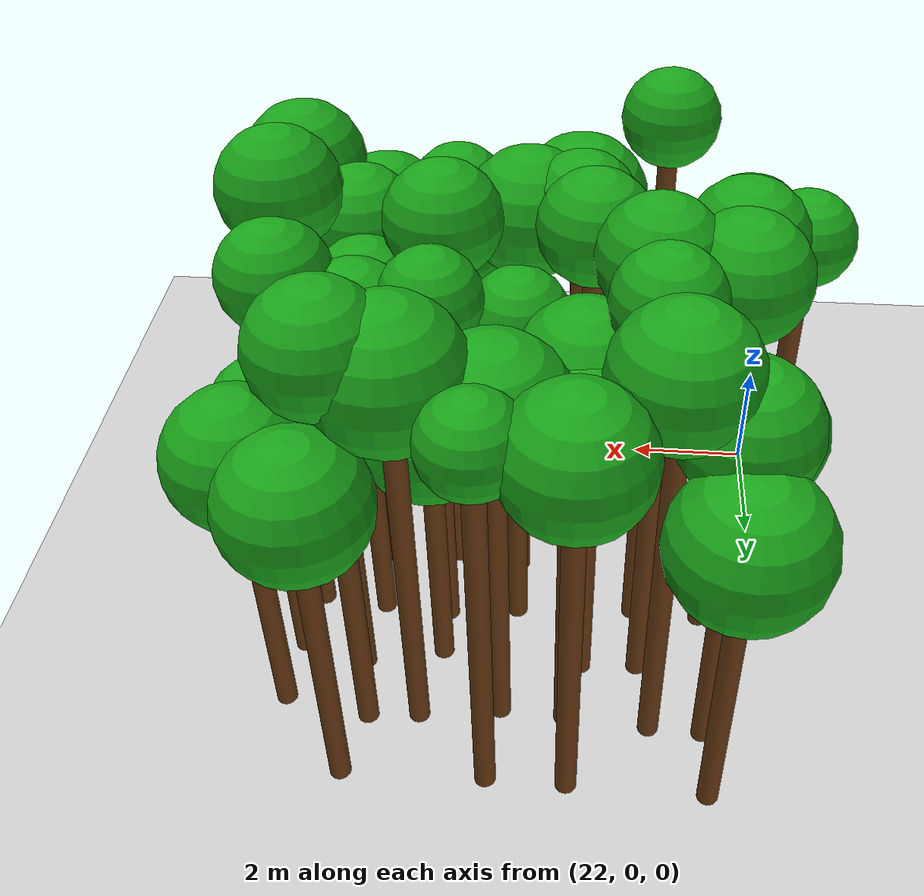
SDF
<sdf version="1.6">
 <world name="forest_world">
  <include><uri>model://sun</uri></include>
  <include><uri>model://ground_plane</uri></include>
  <model name="tree_2591_trunk">
   <static>true</static>
   <pose>21.80 1.96 2.91 0 0 0</pose>
   <link name="link">
    <collision name="collision">
     <geometry><cylinder><radius>0.16</radius><length>5.81</length></cylinder></geometry>
    </collision>
    <visual name="visual">
     <geometry><cylinder><radius>0.16</radius><length>5.81</length></cylinder></geometry>
     <material><ambient>0.35 0.20 0.05 1</ambient><diffuse>0.45 0.25 0.08 1</diffuse></material>
    </visual>
   </link>
  </model>
  <model name="tree_2591_leaf">
   <static>true</static>
   <pose>21.80 1.96 6.26 0 0 0</pose>
   <link name="link">
    <collision name="collision"><geometry><sphere><radius>0.74</radius></sphere></geometry></collision>
    <visual name="visual">
     <geometry><sphere><radius>0.74</radius></sphere></geometry>
     <material><ambient>0.05 0.45 0.05 1</ambient><diffuse>0.10 0.65 0.10 1</diffuse></material>
    </visual>
   </link>
  </model>
  <model name="tree_2645_trunk">
   <static>true</static>
   <pose>22.66 0.66 2.43 0 0 0</pose>
   <link name="link">
    <collision name="collision">
     <geometry><cylinder><radius>0.16</radius><length>4.86</length></cylinder></geometry>
    </collision>
    <visual name="visual">
     <geometry><cylinder><radius>0.16</radius><length>4.86</length></cylinder></geometry>
     <material><ambient>0.35 0.20 0.05 1</ambient><diffuse>0.45 0.25 0.08 1</diffuse></material>
    </visual>
   </link>
  </model>
  <model name="tree_2645_leaf">
   <static>true</static>
   <pose>22.66 0.66 5.37 0 0 0</pose>
   <link name="link">
    <collision name="collision"><geometry><sphere><radius>0.83</radius></sphere></geometry></collision>
    <visual name="visual">
     <geometry><sphere><radius>0.83</radius></sphere></geometry>
     <material><ambient>0.05 0.45 0.05 1</ambient><diffuse>0.10 0.65 0.10 1</diffuse></material>
    </visual>
   </link>
  </model>
  <model name="tree_2646_trunk">
   <static>true</static>
   <pose>22.65 1.84 2.86 0 0 0</pose>
   <link name="link">
    <collision name="collision">
     <geometry><cylinder><radius>0.16</radius><length>5.73</length></cylinder></geometry>
    </collision>
    <visual name="visual">
     <geometry><cylinder><radius>0.16</radius><length>5.73</length></cylinder></geometry>
     <material><ambient>0.35 0.20 0.05 1</ambient><diffuse>0.45 0.25 0.08 1</diffuse></material>
    </visual>
   </link>
  </model>
  <model name="tree_2646_leaf">
   <static>true</static>
   <pose>22.65 1.84 6.25 0 0 0</pose>
   <link name="link">
    <collision name="collision"><geometry><sphere><radius>0.88</radius></sphere></geometry></collision>
    <visual name="visual">
     <geometry><sphere><radius>0.88</radius></sphere></geometry>
     <material><ambient>0.05 0.45 0.05 1</ambient><diffuse>0.10 0.65 0.10 1</diffuse></material>
    </visual>
   </link>
  </model>
  <model name="tree_2647_trunk">
   <static>true</static>
   <pose>22.83 3.02 3.18 0 0 0</pose>
   <link name="link">
    <collision name="collision">
     <geometry><cylinder><radius>0.16</radius><length>6.36</length></cylinder></geometry>
    </collision>
    <visual name="visual">
     <geometry><cylinder><radius>0.16</radius><length>6.36</length></cylinder></geometry>
     <material><ambient>0.35 0.20 0.05 1</ambient><diffuse>0.45 0.25 0.08 1</diffuse></material>
    </visual>
   </link>
  </model>
  <model name="tree_2647_leaf">
   <static>true</static>
   <pose>22.83 3.02 6.90 0 0 0</pose>
   <link name="link">
    <collision name="collision"><geometry><sphere><radius>0.89</radius></sphere></geometry></collision>
    <visual name="visual">
     <geometry><sphere><radius>0.89</radius></sphere></geometry>
     <material><ambient>0.05 0.45 0.05 1</ambient><diffuse>0.10 0.65 0.10 1</diffuse></material>
    </visual>
   </link>
  </model>
  <model name="tree_2648_trunk">
   <static>true</static>
   <pose>22.94 4.10 3.21 0 0 0</pose>
   <link name="link">
    <collision name="collision">
     <geometry><cylinder><radius>0.16</radius><length>6.42</length></cylinder></geometry>
    </collision>
    <visual name="visual">
     <geometry><cylinder><radius>0.16</radius><length>6.42</length></cylinder></geometry>
     <material><ambient>0.35 0.20 0.05 1</ambient><diffuse>0.45 0.25 0.08 1</diffuse></material>
    </visual>
   </link>
  </model>
  <model name="tree_2648_leaf">
   <static>true</static>
   <pose>22.94 4.10 6.99 0 0 0</pose>
   <link name="link">
    <collision name="collision"><geometry><sphere><radius>0.94</radius></sphere></geometry></collision>
    <visual name="visual">
     <geometry><sphere><radius>0.94</radius></sphere></geometry>
     <material><ambient>0.05 0.45 0.05 1</ambient><diffuse>0.10 0.65 0.10 1</diffuse></material>
    </visual>
   </link>
  </model>
  <model name="tree_2649_trunk">
   <static>true</static>
   <pose>22.62 5.11 2.28 0 0 0</pose>
   <link name="link">
    <collision name="collision">
     <geometry><cylinder><radius>0.16</radius><length>4.57</length></cylinder></geometry>
    </collision>
    <visual name="visual">
     <geometry><cylinder><radius>0.16</radius><length>4.57</length></cylinder></geometry>
     <material><ambient>0.35 0.20 0.05 1</ambient><diffuse>0.45 0.25 0.08 1</diffuse></material>
    </visual>
   </link>
  </model>
  <model name="tree_2649_leaf">
   <static>true</static>
   <pose>22.62 5.11 5.16 0 0 0</pose>
   <link name="link">
    <collision name="collision"><geometry><sphere><radius>0.99</radius></sphere></geometry></collision>
    <visual name="visual">
     <geometry><sphere><radius>0.99</radius></sphere></geometry>
     <material><ambient>0.05 0.45 0.05 1</ambient><diffuse>0.10 0.65 0.10 1</diffuse></material>
    </visual>
   </link>
  </model>
  <model name="tree_2650_trunk">
   <static>true</static>
   <pose>22.96 6.38 2.88 0 0 0</pose>
   <link name="link">
    <collision name="collision">
     <geometry><cylinder><radius>0.16</radius><length>5.77</length></cylinder></geometry>
    </collision>
    <visual name="visual">
     <geometry><cylinder><radius>0.16</radius><length>5.77</length></cylinder></geometry>
     <material><ambient>0.35 0.20 0.05 1</ambient><diffuse>0.45 0.25 0.08 1</diffuse></material>
    </visual>
   </link>
  </model>
  <model name="tree_2650_leaf">
   <static>true</static>
   <pose>22.96 6.38 6.34 0 0 0</pose>
   <link name="link">
    <collision name="collision"><geometry><sphere><radius>0.96</radius></sphere></geometry></collision>
    <visual name="visual">
     <geometry><sphere><radius>0.96</radius></sphere></geometry>
     <material><ambient>0.05 0.45 0.05 1</ambient><diffuse>0.10 0.65 0.10 1</diffuse></material>
    </visual>
   </link>
  </model>
  <model name="tree_2651_trunk">
   <static>true</static>
   <pose>22.91 7.47 2.39 0 0 0</pose>
   <link name="link">
    <collision name="collision">
     <geometry><cylinder><radius>0.16</radius><length>4.78</length></cylinder></geometry>
    </collision>
    <visual name="visual">
     <geometry><cylinder><radius>0.16</radius><length>4.78</length></cylinder></geometry>
     <material><ambient>0.35 0.20 0.05 1</ambient><diffuse>0.45 0.25 0.08 1</diffuse></material>
    </visual>
   </link>
  </model>
  <model name="tree_2651_leaf">
   <static>true</static>
   <pose>22.91 7.47 5.43 0 0 0</pose>
   <link name="link">
    <collision name="collision"><geometry><sphere><radius>1.09</radius></sphere></geometry></collision>
    <visual name="visual">
     <geometry><sphere><radius>1.09</radius></sphere></geometry>
     <material><ambient>0.05 0.45 0.05 1</ambient><diffuse>0.10 0.65 0.10 1</diffuse></material>
    </visual>
   </link>
  </model>
  <model name="tree_2699_trunk">
   <static>true</static>
   <pose>23.82 -0.29 3.25 0 0 0</pose>
   <link name="link">
    <collision name="collision">
     <geometry><cylinder><radius>0.16</radius><length>6.49</length></cylinder></geometry>
    </collision>
    <visual name="visual">
     <geometry><cylinder><radius>0.16</radius><length>6.49</length></cylinder></geometry>
     <material><ambient>0.35 0.20 0.05 1</ambient><diffuse>0.45 0.25 0.08 1</diffuse></material>
    </visual>
   </link>
  </model>
  <model name="tree_2699_leaf">
   <static>true</static>
   <pose>23.82 -0.29 6.97 0 0 0</pose>
   <link name="link">
    <collision name="collision"><geometry><sphere><radius>0.79</radius></sphere></geometry></collision>
    <visual name="visual">
     <geometry><sphere><radius>0.79</radius></sphere></geometry>
     <material><ambient>0.05 0.45 0.05 1</ambient><diffuse>0.10 0.65 0.10 1</diffuse></material>
    </visual>
   </link>
  </model>
  <model name="tree_2700_trunk">
   <static>true</static>
   <pose>23.86 0.95 2.19 0 0 0</pose>
   <link name="link">
    <collision name="collision">
     <geometry><cylinder><radius>0.16</radius><length>4.38</length></cylinder></geometry>
    </collision>
    <visual name="visual">
     <geometry><cylinder><radius>0.16</radius><length>4.38</length></cylinder></geometry>
     <material><ambient>0.35 0.20 0.05 1</ambient><diffuse>0.45 0.25 0.08 1</diffuse></material>
    </visual>
   </link>
  </model>
  <model name="tree_2700_leaf">
   <static>true</static>
   <pose>23.86 0.95 4.87 0 0 0</pose>
   <link name="link">
    <collision name="collision"><geometry><sphere><radius>0.81</radius></sphere></geometry></collision>
    <visual name="visual">
     <geometry><sphere><radius>0.81</radius></sphere></geometry>
     <material><ambient>0.05 0.45 0.05 1</ambient><diffuse>0.10 0.65 0.10 1</diffuse></material>
    </visual>
   </link>
  </model>
  <model name="tree_2701_trunk">
   <static>true</static>
   <pose>23.74 2.00 2.26 0 0 0</pose>
   <link name="link">
    <collision name="collision">
     <geometry><cylinder><radius>0.16</radius><length>4.52</length></cylinder></geometry>
    </collision>
    <visual name="visual">
     <geometry><cylinder><radius>0.16</radius><length>4.52</length></cylinder></geometry>
     <material><ambient>0.35 0.20 0.05 1</ambient><diffuse>0.45 0.25 0.08 1</diffuse></material>
    </visual>
   </link>
  </model>
  <model name="tree_2701_leaf">
   <static>true</static>
   <pose>23.74 2.00 5.14 0 0 0</pose>
   <link name="link">
    <collision name="collision"><geometry><sphere><radius>1.04</radius></sphere></geometry></collision>
    <visual name="visual">
     <geometry><sphere><radius>1.04</radius></sphere></geometry>
     <material><ambient>0.05 0.45 0.05 1</ambient><diffuse>0.10 0.65 0.10 1</diffuse></material>
    </visual>
   </link>
  </model>
  <model name="tree_2702_trunk">
   <static>true</static>
   <pose>23.91 3.04 2.12 0 0 0</pose>
   <link name="link">
    <collision name="collision">
     <geometry><cylinder><radius>0.16</radius><length>4.24</length></cylinder></geometry>
    </collision>
    <visual name="visual">
     <geometry><cylinder><radius>0.16</radius><length>4.24</length></cylinder></geometry>
     <material><ambient>0.35 0.20 0.05 1</ambient><diffuse>0.45 0.25 0.08 1</diffuse></material>
    </visual>
   </link>
  </model>
  <model name="tree_2702_leaf">
   <static>true</static>
   <pose>23.91 3.04 4.81 0 0 0</pose>
   <link name="link">
    <collision name="collision"><geometry><sphere><radius>0.96</radius></sphere></geometry></collision>
    <visual name="visual">
     <geometry><sphere><radius>0.96</radius></sphere></geometry>
     <material><ambient>0.05 0.45 0.05 1</ambient><diffuse>0.10 0.65 0.10 1</diffuse></material>
    </visual>
   </link>
  </model>
  <model name="tree_2703_trunk">
   <static>true</static>
   <pose>24.06 4.02 3.33 0 0 0</pose>
   <link name="link">
    <collision name="collision">
     <geometry><cylinder><radius>0.16</radius><length>6.67</length></cylinder></geometry>
    </collision>
    <visual name="visual">
     <geometry><cylinder><radius>0.16</radius><length>6.67</length></cylinder></geometry>
     <material><ambient>0.35 0.20 0.05 1</ambient><diffuse>0.45 0.25 0.08 1</diffuse></material>
    </visual>
   </link>
  </model>
  <model name="tree_2703_leaf">
   <static>true</static>
   <pose>24.06 4.02 7.20 0 0 0</pose>
   <link name="link">
    <collision name="collision"><geometry><sphere><radius>0.89</radius></sphere></geometry></collision>
    <visual name="visual">
     <geometry><sphere><radius>0.89</radius></sphere></geometry>
     <material><ambient>0.05 0.45 0.05 1</ambient><diffuse>0.10 0.65 0.10 1</diffuse></material>
    </visual>
   </link>
  </model>
  <model name="tree_2704_trunk">
   <static>true</static>
   <pose>23.98 5.18 3.44 0 0 0</pose>
   <link name="link">
    <collision name="collision">
     <geometry><cylinder><radius>0.16</radius><length>6.87</length></cylinder></geometry>
    </collision>
    <visual name="visual">
     <geometry><cylinder><radius>0.16</radius><length>6.87</length></cylinder></geometry>
     <material><ambient>0.35 0.20 0.05 1</ambient><diffuse>0.45 0.25 0.08 1</diffuse></material>
    </visual>
   </link>
  </model>
  <model name="tree_2704_leaf">
   <static>true</static>
   <pose>23.98 5.18 7.33 0 0 0</pose>
   <link name="link">
    <collision name="collision"><geometry><sphere><radius>0.77</radius></sphere></geometry></collision>
    <visual name="visual">
     <geometry><sphere><radius>0.77</radius></sphere></geometry>
     <material><ambient>0.05 0.45 0.05 1</ambient><diffuse>0.10 0.65 0.10 1</diffuse></material>
    </visual>
   </link>
  </model>
  <model name="tree_2705_trunk">
   <static>true</static>
   <pose>23.79 6.34 3.25 0 0 0</pose>
   <link name="link">
    <collision name="collision">
     <geometry><cylinder><radius>0.16</radius><length>6.50</length></cylinder></geometry>
    </collision>
    <visual name="visual">
     <geometry><cylinder><radius>0.16</radius><length>6.50</length></cylinder></geometry>
     <material><ambient>0.35 0.20 0.05 1</ambient><diffuse>0.45 0.25 0.08 1</diffuse></material>
    </visual>
   </link>
  </model>
  <model name="tree_2705_leaf">
   <static>true</static>
   <pose>23.79 6.34 7.10 0 0 0</pose>
   <link name="link">
    <collision name="collision"><geometry><sphere><radius>0.99</radius></sphere></geometry></collision>
    <visual name="visual">
     <geometry><sphere><radius>0.99</radius></sphere></geometry>
     <material><ambient>0.05 0.45 0.05 1</ambient><diffuse>0.10 0.65 0.10 1</diffuse></material>
    </visual>
   </link>
  </model>
  <model name="tree_2755_trunk">
   <static>true</static>
   <pose>25.17 0.82 2.74 0 0 0</pose>
   <link name="link">
    <collision name="collision">
     <geometry><cylinder><radius>0.16</radius><length>5.48</length></cylinder></geometry>
    </collision>
    <visual name="visual">
     <geometry><cylinder><radius>0.16</radius><length>5.48</length></cylinder></geometry>
     <material><ambient>0.35 0.20 0.05 1</ambient><diffuse>0.45 0.25 0.08 1</diffuse></material>
    </visual>
   </link>
  </model>
  <model name="tree_2755_leaf">
   <static>true</static>
   <pose>25.17 0.82 6.11 0 0 0</pose>
   <link name="link">
    <collision name="collision"><geometry><sphere><radius>1.04</radius></sphere></geometry></collision>
    <visual name="visual">
     <geometry><sphere><radius>1.04</radius></sphere></geometry>
     <material><ambient>0.05 0.45 0.05 1</ambient><diffuse>0.10 0.65 0.10 1</diffuse></material>
    </visual>
   </link>
  </model>
  <model name="tree_2756_trunk">
   <static>true</static>
   <pose>25.13 2.05 3.12 0 0 0</pose>
   <link name="link">
    <collision name="collision">
     <geometry><cylinder><radius>0.16</radius><length>6.24</length></cylinder></geometry>
    </collision>
    <visual name="visual">
     <geometry><cylinder><radius>0.16</radius><length>6.24</length></cylinder></geometry>
     <material><ambient>0.35 0.20 0.05 1</ambient><diffuse>0.45 0.25 0.08 1</diffuse></material>
    </visual>
   </link>
  </model>
  <model name="tree_2756_leaf">
   <static>true</static>
   <pose>25.13 2.05 6.74 0 0 0</pose>
   <link name="link">
    <collision name="collision"><geometry><sphere><radius>0.83</radius></sphere></geometry></collision>
    <visual name="visual">
     <geometry><sphere><radius>0.83</radius></sphere></geometry>
     <material><ambient>0.05 0.45 0.05 1</ambient><diffuse>0.10 0.65 0.10 1</diffuse></material>
    </visual>
   </link>
  </model>
  <model name="tree_2757_trunk">
   <static>true</static>
   <pose>24.93 3.15 3.29 0 0 0</pose>
   <link name="link">
    <collision name="collision">
     <geometry><cylinder><radius>0.16</radius><length>6.58</length></cylinder></geometry>
    </collision>
    <visual name="visual">
     <geometry><cylinder><radius>0.16</radius><length>6.58</length></cylinder></geometry>
     <material><ambient>0.35 0.20 0.05 1</ambient><diffuse>0.45 0.25 0.08 1</diffuse></material>
    </visual>
   </link>
  </model>
  <model name="tree_2757_leaf">
   <static>true</static>
   <pose>24.93 3.15 7.08 0 0 0</pose>
   <link name="link">
    <collision name="collision"><geometry><sphere><radius>0.84</radius></sphere></geometry></collision>
    <visual name="visual">
     <geometry><sphere><radius>0.84</radius></sphere></geometry>
     <material><ambient>0.05 0.45 0.05 1</ambient><diffuse>0.10 0.65 0.10 1</diffuse></material>
    </visual>
   </link>
  </model>
  <model name="tree_2758_trunk">
   <static>true</static>
   <pose>24.98 4.23 2.42 0 0 0</pose>
   <link name="link">
    <collision name="collision">
     <geometry><cylinder><radius>0.16</radius><length>4.83</length></cylinder></geometry>
    </collision>
    <visual name="visual">
     <geometry><cylinder><radius>0.16</radius><length>4.83</length></cylinder></geometry>
     <material><ambient>0.35 0.20 0.05 1</ambient><diffuse>0.45 0.25 0.08 1</diffuse></material>
    </visual>
   </link>
  </model>
  <model name="tree_2758_leaf">
   <static>true</static>
   <pose>24.98 4.23 5.46 0 0 0</pose>
   <link name="link">
    <collision name="collision"><geometry><sphere><radius>1.04</radius></sphere></geometry></collision>
    <visual name="visual">
     <geometry><sphere><radius>1.04</radius></sphere></geometry>
     <material><ambient>0.05 0.45 0.05 1</ambient><diffuse>0.10 0.65 0.10 1</diffuse></material>
    </visual>
   </link>
  </model>
  <model name="tree_2759_trunk">
   <static>true</static>
   <pose>24.88 5.21 2.23 0 0 0</pose>
   <link name="link">
    <collision name="collision">
     <geometry><cylinder><radius>0.16</radius><length>4.47</length></cylinder></geometry>
    </collision>
    <visual name="visual">
     <geometry><cylinder><radius>0.16</radius><length>4.47</length></cylinder></geometry>
     <material><ambient>0.35 0.20 0.05 1</ambient><diffuse>0.45 0.25 0.08 1</diffuse></material>
    </visual>
   </link>
  </model>
  <model name="tree_2759_leaf">
   <static>true</static>
   <pose>24.88 5.21 5.09 0 0 0</pose>
   <link name="link">
    <collision name="collision"><geometry><sphere><radius>1.03</radius></sphere></geometry></collision>
    <visual name="visual">
     <geometry><sphere><radius>1.03</radius></sphere></geometry>
     <material><ambient>0.05 0.45 0.05 1</ambient><diffuse>0.10 0.65 0.10 1</diffuse></material>
    </visual>
   </link>
  </model>
  <model name="tree_2760_trunk">
   <static>true</static>
   <pose>25.10 6.23 2.42 0 0 0</pose>
   <link name="link">
    <collision name="collision">
     <geometry><cylinder><radius>0.16</radius><length>4.85</length></cylinder></geometry>
    </collision>
    <visual name="visual">
     <geometry><cylinder><radius>0.16</radius><length>4.85</length></cylinder></geometry>
     <material><ambient>0.35 0.20 0.05 1</ambient><diffuse>0.45 0.25 0.08 1</diffuse></material>
    </visual>
   </link>
  </model>
  <model name="tree_2760_leaf">
   <static>true</static>
   <pose>25.10 6.23 5.30 0 0 0</pose>
   <link name="link">
    <collision name="collision"><geometry><sphere><radius>0.75</radius></sphere></geometry></collision>
    <visual name="visual">
     <geometry><sphere><radius>0.75</radius></sphere></geometry>
     <material><ambient>0.05 0.45 0.05 1</ambient><diffuse>0.10 0.65 0.10 1</diffuse></material>
    </visual>
   </link>
  </model>
  <model name="tree_2761_trunk">
   <static>true</static>
   <pose>25.02 7.42 3.04 0 0 0</pose>
   <link name="link">
    <collision name="collision">
     <geometry><cylinder><radius>0.16</radius><length>6.08</length></cylinder></geometry>
    </collision>
    <visual name="visual">
     <geometry><cylinder><radius>0.16</radius><length>6.08</length></cylinder></geometry>
     <material><ambient>0.35 0.20 0.05 1</ambient><diffuse>0.45 0.25 0.08 1</diffuse></material>
    </visual>
   </link>
  </model>
  <model name="tree_2761_leaf">
   <static>true</static>
   <pose>25.02 7.42 6.68 0 0 0</pose>
   <link name="link">
    <collision name="collision"><geometry><sphere><radius>1.00</radius></sphere></geometry></collision>
    <visual name="visual">
     <geometry><sphere><radius>1.00</radius></sphere></geometry>
     <material><ambient>0.05 0.45 0.05 1</ambient><diffuse>0.10 0.65 0.10 1</diffuse></material>
    </visual>
   </link>
  </model>
  <model name="tree_2810_trunk">
   <static>true</static>
   <pose>26.07 0.66 2.58 0 0 0</pose>
   <link name="link">
    <collision name="collision">
     <geometry><cylinder><radius>0.16</radius><length>5.17</length></cylinder></geometry>
    </collision>
    <visual name="visual">
     <geometry><cylinder><radius>0.16</radius><length>5.17</length></cylinder></geometry>
     <material><ambient>0.35 0.20 0.05 1</ambient><diffuse>0.45 0.25 0.08 1</diffuse></material>
    </visual>
   </link>
  </model>
  <model name="tree_2810_leaf">
   <static>true</static>
   <pose>26.07 0.66 5.71 0 0 0</pose>
   <link name="link">
    <collision name="collision"><geometry><sphere><radius>0.91</radius></sphere></geometry></collision>
    <visual name="visual">
     <geometry><sphere><radius>0.91</radius></sphere></geometry>
     <material><ambient>0.05 0.45 0.05 1</ambient><diffuse>0.10 0.65 0.10 1</diffuse></material>
    </visual>
   </link>
  </model>
  <model name="tree_2811_trunk">
   <static>true</static>
   <pose>25.92 1.83 2.93 0 0 0</pose>
   <link name="link">
    <collision name="collision">
     <geometry><cylinder><radius>0.16</radius><length>5.86</length></cylinder></geometry>
    </collision>
    <visual name="visual">
     <geometry><cylinder><radius>0.16</radius><length>5.86</length></cylinder></geometry>
     <material><ambient>0.35 0.20 0.05 1</ambient><diffuse>0.45 0.25 0.08 1</diffuse></material>
    </visual>
   </link>
  </model>
  <model name="tree_2811_leaf">
   <static>true</static>
   <pose>25.92 1.83 6.47 0 0 0</pose>
   <link name="link">
    <collision name="collision"><geometry><sphere><radius>1.00</radius></sphere></geometry></collision>
    <visual name="visual">
     <geometry><sphere><radius>1.00</radius></sphere></geometry>
     <material><ambient>0.05 0.45 0.05 1</ambient><diffuse>0.10 0.65 0.10 1</diffuse></material>
    </visual>
   </link>
  </model>
  <model name="tree_2812_trunk">
   <static>true</static>
   <pose>26.01 3.08 2.48 0 0 0</pose>
   <link name="link">
    <collision name="collision">
     <geometry><cylinder><radius>0.16</radius><length>4.96</length></cylinder></geometry>
    </collision>
    <visual name="visual">
     <geometry><cylinder><radius>0.16</radius><length>4.96</length></cylinder></geometry>
     <material><ambient>0.35 0.20 0.05 1</ambient><diffuse>0.45 0.25 0.08 1</diffuse></material>
    </visual>
   </link>
  </model>
  <model name="tree_2812_leaf">
   <static>true</static>
   <pose>26.01 3.08 5.43 0 0 0</pose>
   <link name="link">
    <collision name="collision"><geometry><sphere><radius>0.78</radius></sphere></geometry></collision>
    <visual name="visual">
     <geometry><sphere><radius>0.78</radius></sphere></geometry>
     <material><ambient>0.05 0.45 0.05 1</ambient><diffuse>0.10 0.65 0.10 1</diffuse></material>
    </visual>
   </link>
  </model>
  <model name="tree_2813_trunk">
   <static>true</static>
   <pose>25.98 4.12 2.06 0 0 0</pose>
   <link name="link">
    <collision name="collision">
     <geometry><cylinder><radius>0.16</radius><length>4.12</length></cylinder></geometry>
    </collision>
    <visual name="visual">
     <geometry><cylinder><radius>0.16</radius><length>4.12</length></cylinder></geometry>
     <material><ambient>0.35 0.20 0.05 1</ambient><diffuse>0.45 0.25 0.08 1</diffuse></material>
    </visual>
   </link>
  </model>
  <model name="tree_2813_leaf">
   <static>true</static>
   <pose>25.98 4.12 4.56 0 0 0</pose>
   <link name="link">
    <collision name="collision"><geometry><sphere><radius>0.74</radius></sphere></geometry></collision>
    <visual name="visual">
     <geometry><sphere><radius>0.74</radius></sphere></geometry>
     <material><ambient>0.05 0.45 0.05 1</ambient><diffuse>0.10 0.65 0.10 1</diffuse></material>
    </visual>
   </link>
  </model>
  <model name="tree_2814_trunk">
   <static>true</static>
   <pose>26.25 5.06 2.29 0 0 0</pose>
   <link name="link">
    <collision name="collision">
     <geometry><cylinder><radius>0.16</radius><length>4.58</length></cylinder></geometry>
    </collision>
    <visual name="visual">
     <geometry><cylinder><radius>0.16</radius><length>4.58</length></cylinder></geometry>
     <material><ambient>0.35 0.20 0.05 1</ambient><diffuse>0.45 0.25 0.08 1</diffuse></material>
    </visual>
   </link>
  </model>
  <model name="tree_2814_leaf">
   <static>true</static>
   <pose>26.25 5.06 5.24 0 0 0</pose>
   <link name="link">
    <collision name="collision"><geometry><sphere><radius>1.09</radius></sphere></geometry></collision>
    <visual name="visual">
     <geometry><sphere><radius>1.09</radius></sphere></geometry>
     <material><ambient>0.05 0.45 0.05 1</ambient><diffuse>0.10 0.65 0.10 1</diffuse></material>
    </visual>
   </link>
  </model>
  <model name="tree_2815_trunk">
   <static>true</static>
   <pose>26.10 6.16 2.81 0 0 0</pose>
   <link name="link">
    <collision name="collision">
     <geometry><cylinder><radius>0.16</radius><length>5.61</length></cylinder></geometry>
    </collision>
    <visual name="visual">
     <geometry><cylinder><radius>0.16</radius><length>5.61</length></cylinder></geometry>
     <material><ambient>0.35 0.20 0.05 1</ambient><diffuse>0.45 0.25 0.08 1</diffuse></material>
    </visual>
   </link>
  </model>
  <model name="tree_2815_leaf">
   <static>true</static>
   <pose>26.10 6.16 6.26 0 0 0</pose>
   <link name="link">
    <collision name="collision"><geometry><sphere><radius>1.08</radius></sphere></geometry></collision>
    <visual name="visual">
     <geometry><sphere><radius>1.08</radius></sphere></geometry>
     <material><ambient>0.05 0.45 0.05 1</ambient><diffuse>0.10 0.65 0.10 1</diffuse></material>
    </visual>
   </link>
  </model>
  <model name="tree_2816_trunk">
   <static>true</static>
   <pose>26.23 7.39 3.20 0 0 0</pose>
   <link name="link">
    <collision name="collision">
     <geometry><cylinder><radius>0.16</radius><length>6.41</length></cylinder></geometry>
    </collision>
    <visual name="visual">
     <geometry><cylinder><radius>0.16</radius><length>6.41</length></cylinder></geometry>
     <material><ambient>0.35 0.20 0.05 1</ambient><diffuse>0.45 0.25 0.08 1</diffuse></material>
    </visual>
   </link>
  </model>
  <model name="tree_2816_leaf">
   <static>true</static>
   <pose>26.23 7.39 6.83 0 0 0</pose>
   <link name="link">
    <collision name="collision"><geometry><sphere><radius>0.70</radius></sphere></geometry></collision>
    <visual name="visual">
     <geometry><sphere><radius>0.70</radius></sphere></geometry>
     <material><ambient>0.05 0.45 0.05 1</ambient><diffuse>0.10 0.65 0.10 1</diffuse></material>
    </visual>
   </link>
  </model>
  <model name="tree_2864_trunk">
   <static>true</static>
   <pose>27.24 -0.12 2.56 0 0 0</pose>
   <link name="link">
    <collision name="collision">
     <geometry><cylinder><radius>0.16</radius><length>5.13</length></cylinder></geometry>
    </collision>
    <visual name="visual">
     <geometry><cylinder><radius>0.16</radius><length>5.13</length></cylinder></geometry>
     <material><ambient>0.35 0.20 0.05 1</ambient><diffuse>0.45 0.25 0.08 1</diffuse></material>
    </visual>
   </link>
  </model>
  <model name="tree_2864_leaf">
   <static>true</static>
   <pose>27.24 -0.12 5.61 0 0 0</pose>
   <link name="link">
    <collision name="collision"><geometry><sphere><radius>0.80</radius></sphere></geometry></collision>
    <visual name="visual">
     <geometry><sphere><radius>0.80</radius></sphere></geometry>
     <material><ambient>0.05 0.45 0.05 1</ambient><diffuse>0.10 0.65 0.10 1</diffuse></material>
    </visual>
   </link>
  </model>
  <model name="tree_2865_trunk">
   <static>true</static>
   <pose>27.36 0.74 2.26 0 0 0</pose>
   <link name="link">
    <collision name="collision">
     <geometry><cylinder><radius>0.16</radius><length>4.52</length></cylinder></geometry>
    </collision>
    <visual name="visual">
     <geometry><cylinder><radius>0.16</radius><length>4.52</length></cylinder></geometry>
     <material><ambient>0.35 0.20 0.05 1</ambient><diffuse>0.45 0.25 0.08 1</diffuse></material>
    </visual>
   </link>
  </model>
  <model name="tree_2865_leaf">
   <static>true</static>
   <pose>27.36 0.74 5.18 0 0 0</pose>
   <link name="link">
    <collision name="collision"><geometry><sphere><radius>1.10</radius></sphere></geometry></collision>
    <visual name="visual">
     <geometry><sphere><radius>1.10</radius></sphere></geometry>
     <material><ambient>0.05 0.45 0.05 1</ambient><diffuse>0.10 0.65 0.10 1</diffuse></material>
    </visual>
   </link>
  </model>
  <model name="tree_2866_trunk">
   <static>true</static>
   <pose>27.09 1.75 2.87 0 0 0</pose>
   <link name="link">
    <collision name="collision">
     <geometry><cylinder><radius>0.16</radius><length>5.74</length></cylinder></geometry>
    </collision>
    <visual name="visual">
     <geometry><cylinder><radius>0.16</radius><length>5.74</length></cylinder></geometry>
     <material><ambient>0.35 0.20 0.05 1</ambient><diffuse>0.45 0.25 0.08 1</diffuse></material>
    </visual>
   </link>
  </model>
  <model name="tree_2866_leaf">
   <static>true</static>
   <pose>27.09 1.75 6.23 0 0 0</pose>
   <link name="link">
    <collision name="collision"><geometry><sphere><radius>0.82</radius></sphere></geometry></collision>
    <visual name="visual">
     <geometry><sphere><radius>0.82</radius></sphere></geometry>
     <material><ambient>0.05 0.45 0.05 1</ambient><diffuse>0.10 0.65 0.10 1</diffuse></material>
    </visual>
   </link>
  </model>
  <model name="tree_2867_trunk">
   <static>true</static>
   <pose>27.09 2.92 3.22 0 0 0</pose>
   <link name="link">
    <collision name="collision">
     <geometry><cylinder><radius>0.16</radius><length>6.44</length></cylinder></geometry>
    </collision>
    <visual name="visual">
     <geometry><cylinder><radius>0.16</radius><length>6.44</length></cylinder></geometry>
     <material><ambient>0.35 0.20 0.05 1</ambient><diffuse>0.45 0.25 0.08 1</diffuse></material>
    </visual>
   </link>
  </model>
  <model name="tree_2867_leaf">
   <static>true</static>
   <pose>27.09 2.92 6.97 0 0 0</pose>
   <link name="link">
    <collision name="collision"><geometry><sphere><radius>0.87</radius></sphere></geometry></collision>
    <visual name="visual">
     <geometry><sphere><radius>0.87</radius></sphere></geometry>
     <material><ambient>0.05 0.45 0.05 1</ambient><diffuse>0.10 0.65 0.10 1</diffuse></material>
    </visual>
   </link>
  </model>
  <model name="tree_2868_trunk">
   <static>true</static>
   <pose>27.12 4.26 3.06 0 0 0</pose>
   <link name="link">
    <collision name="collision">
     <geometry><cylinder><radius>0.16</radius><length>6.11</length></cylinder></geometry>
    </collision>
    <visual name="visual">
     <geometry><cylinder><radius>0.16</radius><length>6.11</length></cylinder></geometry>
     <material><ambient>0.35 0.20 0.05 1</ambient><diffuse>0.45 0.25 0.08 1</diffuse></material>
    </visual>
   </link>
  </model>
  <model name="tree_2868_leaf">
   <static>true</static>
   <pose>27.12 4.26 6.56 0 0 0</pose>
   <link name="link">
    <collision name="collision"><geometry><sphere><radius>0.74</radius></sphere></geometry></collision>
    <visual name="visual">
     <geometry><sphere><radius>0.74</radius></sphere></geometry>
     <material><ambient>0.05 0.45 0.05 1</ambient><diffuse>0.10 0.65 0.10 1</diffuse></material>
    </visual>
   </link>
  </model>
  <model name="tree_2869_trunk">
   <static>true</static>
   <pose>27.12 5.07 2.15 0 0 0</pose>
   <link name="link">
    <collision name="collision">
     <geometry><cylinder><radius>0.16</radius><length>4.29</length></cylinder></geometry>
    </collision>
    <visual name="visual">
     <geometry><cylinder><radius>0.16</radius><length>4.29</length></cylinder></geometry>
     <material><ambient>0.35 0.20 0.05 1</ambient><diffuse>0.45 0.25 0.08 1</diffuse></material>
    </visual>
   </link>
  </model>
  <model name="tree_2869_leaf">
   <static>true</static>
   <pose>27.12 5.07 4.94 0 0 0</pose>
   <link name="link">
    <collision name="collision"><geometry><sphere><radius>1.09</radius></sphere></geometry></collision>
    <visual name="visual">
     <geometry><sphere><radius>1.09</radius></sphere></geometry>
     <material><ambient>0.05 0.45 0.05 1</ambient><diffuse>0.10 0.65 0.10 1</diffuse></material>
    </visual>
   </link>
  </model>
  <model name="tree_2870_trunk">
   <static>true</static>
   <pose>27.36 6.33 3.15 0 0 0</pose>
   <link name="link">
    <collision name="collision">
     <geometry><cylinder><radius>0.16</radius><length>6.29</length></cylinder></geometry>
    </collision>
    <visual name="visual">
     <geometry><cylinder><radius>0.16</radius><length>6.29</length></cylinder></geometry>
     <material><ambient>0.35 0.20 0.05 1</ambient><diffuse>0.45 0.25 0.08 1</diffuse></material>
    </visual>
   </link>
  </model>
  <model name="tree_2870_leaf">
   <static>true</static>
   <pose>27.36 6.33 6.93 0 0 0</pose>
   <link name="link">
    <collision name="collision"><geometry><sphere><radius>1.06</radius></sphere></geometry></collision>
    <visual name="visual">
     <geometry><sphere><radius>1.06</radius></sphere></geometry>
     <material><ambient>0.05 0.45 0.05 1</ambient><diffuse>0.10 0.65 0.10 1</diffuse></material>
    </visual>
   </link>
  </model>
  <model name="tree_2920_trunk">
   <static>true</static>
   <pose>28.27 0.83 2.55 0 0 0</pose>
   <link name="link">
    <collision name="collision">
     <geometry><cylinder><radius>0.16</radius><length>5.11</length></cylinder></geometry>
    </collision>
    <visual name="visual">
     <geometry><cylinder><radius>0.16</radius><length>5.11</length></cylinder></geometry>
     <material><ambient>0.35 0.20 0.05 1</ambient><diffuse>0.45 0.25 0.08 1</diffuse></material>
    </visual>
   </link>
  </model>
  <model name="tree_2920_leaf">
   <static>true</static>
   <pose>28.27 0.83 5.71 0 0 0</pose>
   <link name="link">
    <collision name="collision"><geometry><sphere><radius>1.00</radius></sphere></geometry></collision>
    <visual name="visual">
     <geometry><sphere><radius>1.00</radius></sphere></geometry>
     <material><ambient>0.05 0.45 0.05 1</ambient><diffuse>0.10 0.65 0.10 1</diffuse></material>
    </visual>
   </link>
  </model>
  <model name="tree_2921_trunk">
   <static>true</static>
   <pose>28.47 1.87 2.88 0 0 0</pose>
   <link name="link">
    <collision name="collision">
     <geometry><cylinder><radius>0.16</radius><length>5.76</length></cylinder></geometry>
    </collision>
    <visual name="visual">
     <geometry><cylinder><radius>0.16</radius><length>5.76</length></cylinder></geometry>
     <material><ambient>0.35 0.20 0.05 1</ambient><diffuse>0.45 0.25 0.08 1</diffuse></material>
    </visual>
   </link>
  </model>
  <model name="tree_2921_leaf">
   <static>true</static>
   <pose>28.47 1.87 6.26 0 0 0</pose>
   <link name="link">
    <collision name="collision"><geometry><sphere><radius>0.85</radius></sphere></geometry></collision>
    <visual name="visual">
     <geometry><sphere><radius>0.85</radius></sphere></geometry>
     <material><ambient>0.05 0.45 0.05 1</ambient><diffuse>0.10 0.65 0.10 1</diffuse></material>
    </visual>
   </link>
  </model>
  <model name="tree_2922_trunk">
   <static>true</static>
   <pose>28.27 3.02 2.67 0 0 0</pose>
   <link name="link">
    <collision name="collision">
     <geometry><cylinder><radius>0.16</radius><length>5.33</length></cylinder></geometry>
    </collision>
    <visual name="visual">
     <geometry><cylinder><radius>0.16</radius><length>5.33</length></cylinder></geometry>
     <material><ambient>0.35 0.20 0.05 1</ambient><diffuse>0.45 0.25 0.08 1</diffuse></material>
    </visual>
   </link>
  </model>
  <model name="tree_2922_leaf">
   <static>true</static>
   <pose>28.27 3.02 5.81 0 0 0</pose>
   <link name="link">
    <collision name="collision"><geometry><sphere><radius>0.79</radius></sphere></geometry></collision>
    <visual name="visual">
     <geometry><sphere><radius>0.79</radius></sphere></geometry>
     <material><ambient>0.05 0.45 0.05 1</ambient><diffuse>0.10 0.65 0.10 1</diffuse></material>
    </visual>
   </link>
  </model>
  <model name="tree_2923_trunk">
   <static>true</static>
   <pose>28.21 4.17 2.76 0 0 0</pose>
   <link name="link">
    <collision name="collision">
     <geometry><cylinder><radius>0.16</radius><length>5.52</length></cylinder></geometry>
    </collision>
    <visual name="visual">
     <geometry><cylinder><radius>0.16</radius><length>5.52</length></cylinder></geometry>
     <material><ambient>0.35 0.20 0.05 1</ambient><diffuse>0.45 0.25 0.08 1</diffuse></material>
    </visual>
   </link>
  </model>
  <model name="tree_2923_leaf">
   <static>true</static>
   <pose>28.21 4.17 6.07 0 0 0</pose>
   <link name="link">
    <collision name="collision"><geometry><sphere><radius>0.90</radius></sphere></geometry></collision>
    <visual name="visual">
     <geometry><sphere><radius>0.90</radius></sphere></geometry>
     <material><ambient>0.05 0.45 0.05 1</ambient><diffuse>0.10 0.65 0.10 1</diffuse></material>
    </visual>
   </link>
  </model>
  <model name="tree_2924_trunk">
   <static>true</static>
   <pose>28.36 5.36 2.72 0 0 0</pose>
   <link name="link">
    <collision name="collision">
     <geometry><cylinder><radius>0.16</radius><length>5.43</length></cylinder></geometry>
    </collision>
    <visual name="visual">
     <geometry><cylinder><radius>0.16</radius><length>5.43</length></cylinder></geometry>
     <material><ambient>0.35 0.20 0.05 1</ambient><diffuse>0.45 0.25 0.08 1</diffuse></material>
    </visual>
   </link>
  </model>
  <model name="tree_2924_leaf">
   <static>true</static>
   <pose>28.36 5.36 5.88 0 0 0</pose>
   <link name="link">
    <collision name="collision"><geometry><sphere><radius>0.75</radius></sphere></geometry></collision>
    <visual name="visual">
     <geometry><sphere><radius>0.75</radius></sphere></geometry>
     <material><ambient>0.05 0.45 0.05 1</ambient><diffuse>0.10 0.65 0.10 1</diffuse></material>
    </visual>
   </link>
  </model>
  <model name="tree_2925_trunk">
   <static>true</static>
   <pose>28.16 6.39 3.39 0 0 0</pose>
   <link name="link">
    <collision name="collision">
     <geometry><cylinder><radius>0.16</radius><length>6.79</length></cylinder></geometry>
    </collision>
    <visual name="visual">
     <geometry><cylinder><radius>0.16</radius><length>6.79</length></cylinder></geometry>
     <material><ambient>0.35 0.20 0.05 1</ambient><diffuse>0.45 0.25 0.08 1</diffuse></material>
    </visual>
   </link>
  </model>
  <model name="tree_2925_leaf">
   <static>true</static>
   <pose>28.16 6.39 7.33 0 0 0</pose>
   <link name="link">
    <collision name="collision"><geometry><sphere><radius>0.91</radius></sphere></geometry></collision>
    <visual name="visual">
     <geometry><sphere><radius>0.91</radius></sphere></geometry>
     <material><ambient>0.05 0.45 0.05 1</ambient><diffuse>0.10 0.65 0.10 1</diffuse></material>
    </visual>
   </link>
  </model>
  <model name="tree_2926_trunk">
   <static>true</static>
   <pose>28.42 7.41 2.54 0 0 0</pose>
   <link name="link">
    <collision name="collision">
     <geometry><cylinder><radius>0.16</radius><length>5.08</length></cylinder></geometry>
    </collision>
    <visual name="visual">
     <geometry><cylinder><radius>0.16</radius><length>5.08</length></cylinder></geometry>
     <material><ambient>0.35 0.20 0.05 1</ambient><diffuse>0.45 0.25 0.08 1</diffuse></material>
    </visual>
   </link>
  </model>
  <model name="tree_2926_leaf">
   <static>true</static>
   <pose>28.42 7.41 5.69 0 0 0</pose>
   <link name="link">
    <collision name="collision"><geometry><sphere><radius>1.02</radius></sphere></geometry></collision>
    <visual name="visual">
     <geometry><sphere><radius>1.02</radius></sphere></geometry>
     <material><ambient>0.05 0.45 0.05 1</ambient><diffuse>0.10 0.65 0.10 1</diffuse></material>
    </visual>
   </link>
  </model>
  <model name="tree_2974_trunk">
   <static>true</static>
   <pose>29.57 -0.21 2.18 0 0 0</pose>
   <link name="link">
    <collision name="collision">
     <geometry><cylinder><radius>0.16</radius><length>4.36</length></cylinder></geometry>
    </collision>
    <visual name="visual">
     <geometry><cylinder><radius>0.16</radius><length>4.36</length></cylinder></geometry>
     <material><ambient>0.35 0.20 0.05 1</ambient><diffuse>0.45 0.25 0.08 1</diffuse></material>
    </visual>
   </link>
  </model>
  <model name="tree_2974_leaf">
   <static>true</static>
   <pose>29.57 -0.21 4.80 0 0 0</pose>
   <link name="link">
    <collision name="collision"><geometry><sphere><radius>0.73</radius></sphere></geometry></collision>
    <visual name="visual">
     <geometry><sphere><radius>0.73</radius></sphere></geometry>
     <material><ambient>0.05 0.45 0.05 1</ambient><diffuse>0.10 0.65 0.10 1</diffuse></material>
    </visual>
   </link>
  </model>
  <model name="tree_2975_trunk">
   <static>true</static>
   <pose>29.49 0.89 3.04 0 0 0</pose>
   <link name="link">
    <collision name="collision">
     <geometry><cylinder><radius>0.16</radius><length>6.09</length></cylinder></geometry>
    </collision>
    <visual name="visual">
     <geometry><cylinder><radius>0.16</radius><length>6.09</length></cylinder></geometry>
     <material><ambient>0.35 0.20 0.05 1</ambient><diffuse>0.45 0.25 0.08 1</diffuse></material>
    </visual>
   </link>
  </model>
  <model name="tree_2975_leaf">
   <static>true</static>
   <pose>29.49 0.89 6.66 0 0 0</pose>
   <link name="link">
    <collision name="collision"><geometry><sphere><radius>0.95</radius></sphere></geometry></collision>
    <visual name="visual">
     <geometry><sphere><radius>0.95</radius></sphere></geometry>
     <material><ambient>0.05 0.45 0.05 1</ambient><diffuse>0.10 0.65 0.10 1</diffuse></material>
    </visual>
   </link>
  </model>
  <model name="tree_2976_trunk">
   <static>true</static>
   <pose>29.30 1.84 2.41 0 0 0</pose>
   <link name="link">
    <collision name="collision">
     <geometry><cylinder><radius>0.16</radius><length>4.83</length></cylinder></geometry>
    </collision>
    <visual name="visual">
     <geometry><cylinder><radius>0.16</radius><length>4.83</length></cylinder></geometry>
     <material><ambient>0.35 0.20 0.05 1</ambient><diffuse>0.45 0.25 0.08 1</diffuse></material>
    </visual>
   </link>
  </model>
  <model name="tree_2976_leaf">
   <static>true</static>
   <pose>29.30 1.84 5.31 0 0 0</pose>
   <link name="link">
    <collision name="collision"><geometry><sphere><radius>0.81</radius></sphere></geometry></collision>
    <visual name="visual">
     <geometry><sphere><radius>0.81</radius></sphere></geometry>
     <material><ambient>0.05 0.45 0.05 1</ambient><diffuse>0.10 0.65 0.10 1</diffuse></material>
    </visual>
   </link>
  </model>
  <model name="tree_2977_trunk">
   <static>true</static>
   <pose>29.38 2.90 3.42 0 0 0</pose>
   <link name="link">
    <collision name="collision">
     <geometry><cylinder><radius>0.16</radius><length>6.83</length></cylinder></geometry>
    </collision>
    <visual name="visual">
     <geometry><cylinder><radius>0.16</radius><length>6.83</length></cylinder></geometry>
     <material><ambient>0.35 0.20 0.05 1</ambient><diffuse>0.45 0.25 0.08 1</diffuse></material>
    </visual>
   </link>
  </model>
  <model name="tree_2977_leaf">
   <static>true</static>
   <pose>29.38 2.90 7.37 0 0 0</pose>
   <link name="link">
    <collision name="collision"><geometry><sphere><radius>0.90</radius></sphere></geometry></collision>
    <visual name="visual">
     <geometry><sphere><radius>0.90</radius></sphere></geometry>
     <material><ambient>0.05 0.45 0.05 1</ambient><diffuse>0.10 0.65 0.10 1</diffuse></material>
    </visual>
   </link>
  </model>
  <model name="tree_2978_trunk">
   <static>true</static>
   <pose>29.28 4.05 3.09 0 0 0</pose>
   <link name="link">
    <collision name="collision">
     <geometry><cylinder><radius>0.16</radius><length>6.19</length></cylinder></geometry>
    </collision>
    <visual name="visual">
     <geometry><cylinder><radius>0.16</radius><length>6.19</length></cylinder></geometry>
     <material><ambient>0.35 0.20 0.05 1</ambient><diffuse>0.45 0.25 0.08 1</diffuse></material>
    </visual>
   </link>
  </model>
  <model name="tree_2978_leaf">
   <static>true</static>
   <pose>29.28 4.05 6.68 0 0 0</pose>
   <link name="link">
    <collision name="collision"><geometry><sphere><radius>0.83</radius></sphere></geometry></collision>
    <visual name="visual">
     <geometry><sphere><radius>0.83</radius></sphere></geometry>
     <material><ambient>0.05 0.45 0.05 1</ambient><diffuse>0.10 0.65 0.10 1</diffuse></material>
    </visual>
   </link>
  </model>
  <model name="tree_2979_trunk">
   <static>true</static>
   <pose>29.42 5.07 2.38 0 0 0</pose>
   <link name="link">
    <collision name="collision">
     <geometry><cylinder><radius>0.16</radius><length>4.76</length></cylinder></geometry>
    </collision>
    <visual name="visual">
     <geometry><cylinder><radius>0.16</radius><length>4.76</length></cylinder></geometry>
     <material><ambient>0.35 0.20 0.05 1</ambient><diffuse>0.45 0.25 0.08 1</diffuse></material>
    </visual>
   </link>
  </model>
  <model name="tree_2979_leaf">
   <static>true</static>
   <pose>29.42 5.07 5.20 0 0 0</pose>
   <link name="link">
    <collision name="collision"><geometry><sphere><radius>0.73</radius></sphere></geometry></collision>
    <visual name="visual">
     <geometry><sphere><radius>0.73</radius></sphere></geometry>
     <material><ambient>0.05 0.45 0.05 1</ambient><diffuse>0.10 0.65 0.10 1</diffuse></material>
    </visual>
   </link>
  </model>
  <model name="tree_2980_trunk">
   <static>true</static>
   <pose>29.51 6.13 2.30 0 0 0</pose>
   <link name="link">
    <collision name="collision">
     <geometry><cylinder><radius>0.16</radius><length>4.61</length></cylinder></geometry>
    </collision>
    <visual name="visual">
     <geometry><cylinder><radius>0.16</radius><length>4.61</length></cylinder></geometry>
     <material><ambient>0.35 0.20 0.05 1</ambient><diffuse>0.45 0.25 0.08 1</diffuse></material>
    </visual>
   </link>
  </model>
  <model name="tree_2980_leaf">
   <static>true</static>
   <pose>29.51 6.13 5.22 0 0 0</pose>
   <link name="link">
    <collision name="collision"><geometry><sphere><radius>1.02</radius></sphere></geometry></collision>
    <visual name="visual">
     <geometry><sphere><radius>1.02</radius></sphere></geometry>
     <material><ambient>0.05 0.45 0.05 1</ambient><diffuse>0.10 0.65 0.10 1</diffuse></material>
    </visual>
   </link>
  </model>
 </world>
</sdf>
